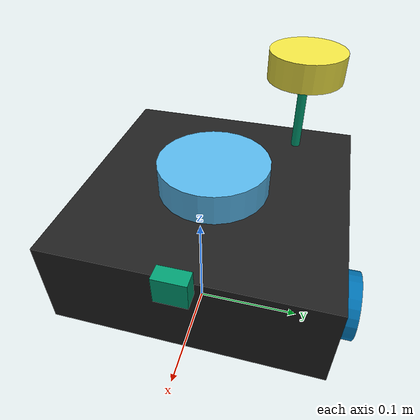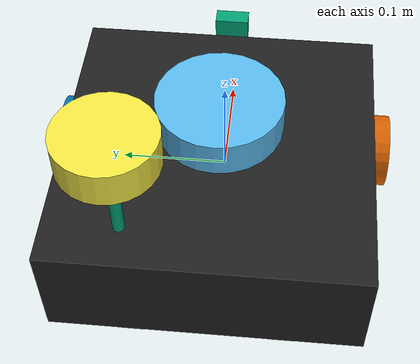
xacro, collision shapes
<?xml version="1.0" ?>
<robot name="p_jfernandes" xmlns:xacro="http://ros.org/wiki/xacro">

    <!--Args are local, properties are global, so we copy the values of the arguments to the properties-->
    <xacro:arg name="player_name" default="p_jfernandes"/>
    <xacro:arg name="player_color"
               default="Orange"/> <!-- e.g. Red, Orange. Must exist in Gazebo/Colors and be defined in properties.xacro.-->

    <!--Properties are global so they can be viewed from inside the included xacros-->
    <!--  args are used with $(arg arg_name), properties are used as ${property_name}-->
    <xacro:property name="player_name" value="$(arg player_name)"/>
    <xacro:property name="player_color" value="$(arg player_color)"/>

    <xacro:property name="top_length" value="0.03"/>

    <xacro:include filename="$(find turtlebot3_description)/urdf/common_properties.xacro"/>
    <xacro:include filename="$(find ${player_name})/urdf/player.gazebo.macro.xacro"/>
    <xacro:include filename="$(find ${player_name})/urdf/properties.xacro"/>

    <xacro:gazebo_macro player_color="${player_color}" laser_visual="true" camera_visual="false" imu_visual="true"/>

    <link name="base_footprint"/>

    <joint name="base_joint" type="fixed">
        <parent link="base_footprint"/>
        <child link="base_link"/>
        <origin xyz="0 0 0.010" rpy="0 0 0"/>
    </joint>

    <link name="base_link">
        <visual>
            <origin xyz="-0.064 0 0.0" rpy="0 0 0"/>
            <geometry>
                <mesh filename="package://turtlebot3_description/meshes/bases/waffle_pi_base.stl"
                      scale="0.001 0.001 0.001"/>
            </geometry>
            <material name="light_black"/>
        </visual>

        <collision>
            <origin xyz="-0.064 0 0.047" rpy="0 0 0"/>
            <geometry>
                <box size="0.266 0.266 0.094"/>
            </geometry>
        </collision>

        <inertial>
            <origin xyz="0 0 0" rpy="0 0 0"/>
            <mass value="1.3729096e+00"/>
            <inertia ixx="8.7002718e-03" ixy="-4.7576583e-05" ixz="1.1160499e-04"
                     iyy="8.6195418e-03" iyz="-3.5422299e-06"
                     izz="1.4612727e-02"/>
        </inertial>
    </link>

    <!--    add blue element   ********************** -->
    <link name="stem">
        <visual>
            <origin xyz="0 0 0.0" rpy="0 0 0"/>
            <geometry>
                <cylinder length="0.1" radius="0.005"/>
            </geometry>
            <material name="dark"/>
        </visual>

        <collision>
            <origin xyz="0 0 0" rpy="0 0 0"/>
            <geometry>
                <cylinder length="0.1" radius="0.005"/>
            </geometry>
        </collision>
    </link>

    <joint name="stem_joint" type="fixed">
        <parent link="base_link"/>
        <child link="stem"/>
        <origin xyz="-0.16 0.07 0.14" rpy="0 0 0"/>
    </joint>

    <link name="top">
        <visual>
            <origin xyz="0 0 0.0" rpy="0 0 0"/>
            <geometry>
                <cylinder length="0.05" radius="0.05"/>
            </geometry>
            <material name="dark"/>
        </visual>

        <collision>
            <origin xyz="0 0 0" rpy="0 0 0"/>
            <geometry>
                <cylinder length="${top_length}" radius="0.04"/>
            </geometry>
        </collision>
    </link>

    <joint name="top_joint" type="fixed">
        <parent link="base_link"/>
        <child link="top"/>
        <origin xyz="-0.16 0.07 0.19" rpy="0 0 0"/>
    </joint>

    <joint name="wheel_left_joint" type="continuous">
        <parent link="base_link"/>
        <child link="wheel_left_link"/>
        <origin xyz="0.0 0.144 0.023" rpy="-1.57 0 0"/>
        <axis xyz="0 0 1"/>
    </joint>

    <link name="wheel_left_link">
        <visual>
            <origin xyz="0 0 0" rpy="1.57 0 0"/>
            <geometry>
                <mesh filename="package://turtlebot3_description/meshes/wheels/left_tire.stl"
                      scale="0.001 0.001 0.001"/>
            </geometry>
            <material name="dark"/>
        </visual>

        <collision>
            <origin xyz="0 0 0" rpy="0 0 0"/>
            <geometry>
                <cylinder length="0.018" radius="0.033"/>
            </geometry>
        </collision>

        <inertial>
            <origin xyz="0 0 0"/>
            <mass value="2.8498940e-02"/>
            <inertia ixx="1.1175580e-05" ixy="-4.2369783e-11" ixz="-5.9381719e-09"
                     iyy="1.1192413e-05" iyz="-1.4400107e-11"
                     izz="2.0712558e-05"/>
        </inertial>
    </link>

    <joint name="wheel_right_joint" type="continuous">
        <parent link="base_link"/>
        <child link="wheel_right_link"/>
        <origin xyz="0.0 -0.144 0.023" rpy="-1.57 0 0"/>
        <axis xyz="0 0 1"/>
    </joint>

    <link name="wheel_right_link">
        <visual>
            <origin xyz="0 0 0" rpy="1.57 0 0"/>
            <geometry>
                <mesh filename="package://turtlebot3_description/meshes/wheels/right_tire.stl"
                      scale="0.001 0.001 0.001"/>
            </geometry>
            <material name="dark"/>
        </visual>

        <collision>
            <origin xyz="0 0 0" rpy="0 0 0"/>
            <geometry>
                <cylinder length="0.018" radius="0.033"/>
            </geometry>
        </collision>

        <inertial>
            <origin xyz="0 0 0"/>
            <mass value="2.8498940e-02"/>
            <inertia ixx="1.1175580e-05" ixy="-4.2369783e-11" ixz="-5.9381719e-09"
                     iyy="1.1192413e-05" iyz="-1.4400107e-11"
                     izz="2.0712558e-05"/>
        </inertial>
    </link>

    <joint name="caster_back_right_joint" type="fixed">
        <parent link="base_link"/>
        <child link="caster_back_right_link"/>
        <origin xyz="-0.177 -0.064 -0.004" rpy="-1.57 0 0"/>
    </joint>

    <link name="caster_back_right_link">
        <collision>
            <origin xyz="0 0.001 0" rpy="0 0 0"/>
            <geometry>
                <box size="0.030 0.009 0.020"/>
            </geometry>
        </collision>

        <inertial>
            <origin xyz="0 0 0"/>
            <mass value="0.005"/>
            <inertia ixx="0.001" ixy="0.0" ixz="0.0"
                     iyy="0.001" iyz="0.0"
                     izz="0.001"/>
        </inertial>
    </link>

    <joint name="caster_back_left_joint" type="fixed">
        <parent link="base_link"/>
        <child link="caster_back_left_link"/>
        <origin xyz="-0.177 0.064 -0.004" rpy="-1.57 0 0"/>
    </joint>

    <link name="caster_back_left_link">
        <collision>
            <origin xyz="0 0.001 0" rpy="0 0 0"/>
            <geometry>
                <box size="0.030 0.009 0.020"/>
            </geometry>
        </collision>

        <inertial>
            <origin xyz="0 0 0"/>
            <mass value="0.005"/>
            <inertia ixx="0.001" ixy="0.0" ixz="0.0"
                     iyy="0.001" iyz="0.0"
                     izz="0.001"/>
        </inertial>
    </link>

    <joint name="imu_joint" type="fixed">
        <parent link="base_link"/>
        <child link="imu_link"/>
        <origin xyz="0.0 0 0.068" rpy="0 0 0"/>
    </joint>

    <link name="imu_link"/>

    <joint name="scan_joint" type="fixed">
        <parent link="base_link"/>
        <child link="base_scan"/>
        <origin xyz="-0.064 0 0.122" rpy="0 0 0"/>
    </joint>

    <link name="base_scan">
        <visual>
            <origin xyz="0 0 0.0" rpy="0 0 0"/>
            <geometry>
                <mesh filename="package://turtlebot3_description/meshes/sensors/lds.stl" scale="0.001 0.001 0.001"/>
            </geometry>
            <material name="dark"/>
        </visual>

        <collision>
            <origin xyz="0.015 0 -0.0065" rpy="0 0 0"/>
            <geometry>
                <cylinder length="0.0315" radius="0.055"/>
            </geometry>
        </collision>

        <inertial>
            <mass value="0.114"/>
            <origin xyz="0 0 0"/>
            <inertia ixx="0.001" ixy="0.0" ixz="0.0"
                     iyy="0.001" iyz="0.0"
                     izz="0.001"/>
        </inertial>
    </link>

    <joint name="camera_joint" type="fixed">
        <origin xyz="0.073 -0.011 0.084" rpy="0 0 0"/>
        <parent link="base_link"/>
        <child link="camera_link"/>
    </joint>

    <link name="camera_link">
        <collision>
            <origin xyz="0.005 0.011 0.013" rpy="0 0 0"/>
            <geometry>
                <box size="0.015 0.030 0.027"/>
            </geometry>
        </collision>
    </link>

    <joint name="camera_rgb_joint" type="fixed">
        <origin xyz="0.003 0.011 0.009" rpy="0 0 0"/>
        <parent link="camera_link"/>
        <child link="camera_rgb_frame"/>
    </joint>
    <link name="camera_rgb_frame"/>

    <joint name="camera_rgb_optical_joint" type="fixed">
        <origin xyz="0 0 0" rpy="-1.57 0 -1.57"/>
        <parent link="camera_rgb_frame"/>
        <child link="camera_rgb_optical_frame"/>
    </joint>
    <link name="camera_rgb_optical_frame"/>

</robot>

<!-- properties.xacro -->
<robot name="properties" xmlns:xacro="http://ros.org/wiki/xacro">

    <xacro:include filename="$(find turtlebot3_description)/urdf/common_properties.xacro"/>

    <!--  Team hunt colors-->
    <material name="Red">
        <color rgba="1.0 0.0 0.0 1.0"/>
    </material>

    <material name="Green">
        <color rgba="0.0 1.0 0.0 1.0"/>
    </material>

    <material name="Blue">
        <color rgba="0.0 0.0 1.0 1.0"/>
    </material>
</robot>
